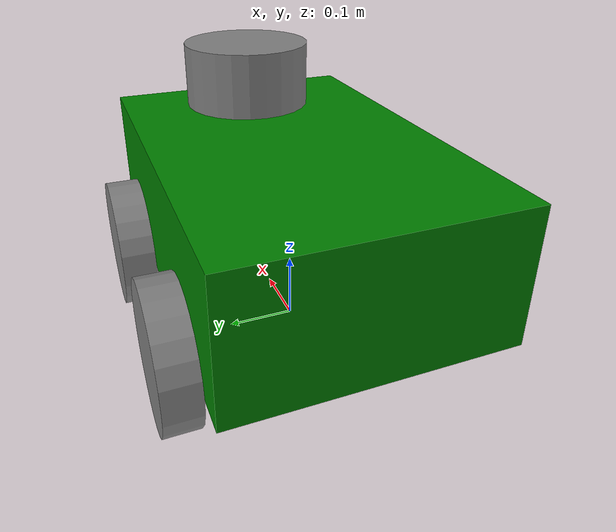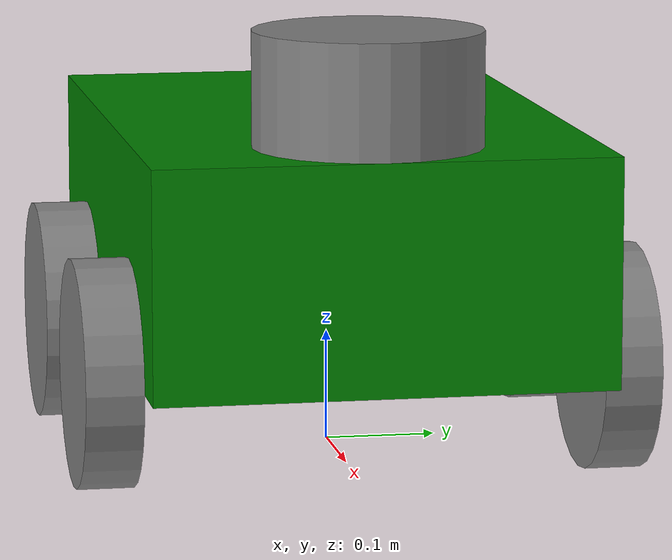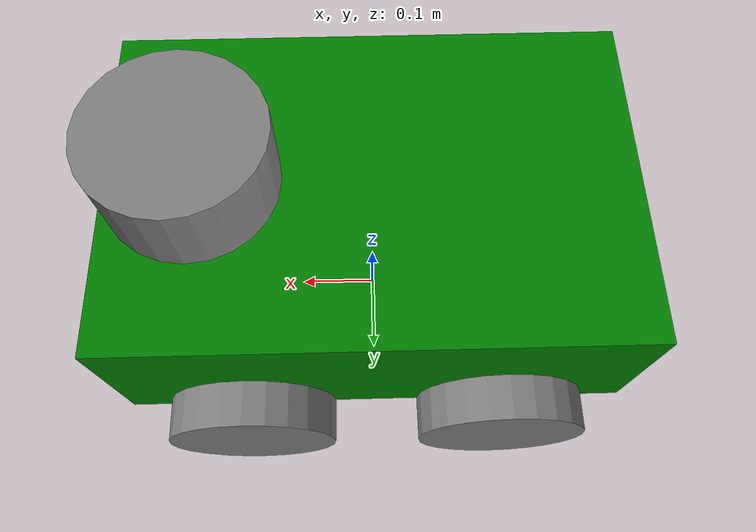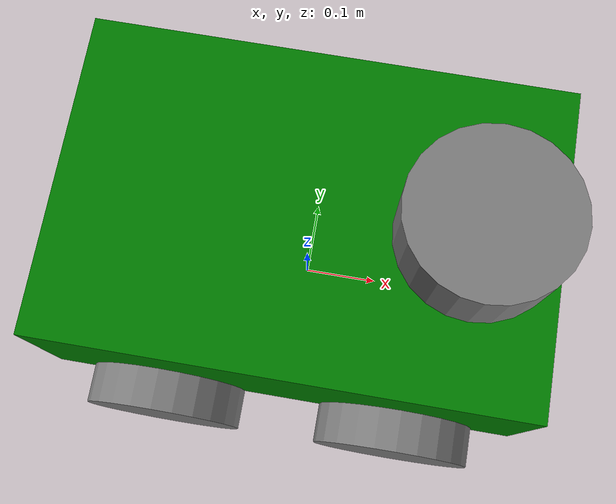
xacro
<?xml version="1.0"?>
<robot name="my_robot" xmlns:xacro="http://www.ros.org/wiki/xacro">

    <xacro:include filename="common_properties.urdf.xacro" />
    <xacro:include filename="mobile_base.urdf.xacro" />
    <xacro:include filename="mobile_base_gazebo.urdf.xacro" />
    <xacro:include filename="sensors.urdf.xacro" />

</robot>

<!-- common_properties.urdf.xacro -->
<robot xmlns:xacro="http://www.ros.org/wiki/xacro">
    <material name="green">
        <color rgba="0 0.5 0 1"/>
    </material>

    <material name="grey">
        <color rgba="0.5 0.5 0.5 1"/>
    </material>

    <xacro:macro name="box_inertia" params="m l w h xyz rpy">
        <inertial>
            <origin xyz="${xyz}" rpy="${rpy}" />
            <mass value="${m}" />
            <inertia ixx="${(m/12) * (h*h +l*l)}" ixy ="0" ixz ="0"
                     iyy="${(m/12) * (w*w +l*l)}" iyz ="0"
                     izz="${(m/12) * (w*w +h*h)}"/>

        </inertial>
    </xacro:macro>

    <xacro:macro name="cylinder_inertia" params="m r h xyz rpy">
        <inertial>
            <origin xyz="${xyz}" rpy="${rpy}" />
            <mass value="${m}" />
            <inertia ixx="${(m/12) * (h*h +3*r*r)}" ixy ="0" ixz ="0"
                     iyy="${(m/12) * (h*h +3*r*r)}" iyz ="0"
                     izz="${(m/2) * (r*r)}"/>
        </inertial>
    </xacro:macro>
</robot>

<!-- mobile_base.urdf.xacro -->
<robot xmlns:xacro="http://www.ros.org/wiki/xacro">

    <xacro:property name="base_length" value="0.6" />
    <xacro:property name="base_width" value="0.4" />
    <xacro:property name="base_height" value="0.2" />
    <xacro:property name="wheel_radius" value="0.1" />
    <xacro:property name="wheel_length" value="0.05" />

    <link name="base_footprint" />

    <link name="base_link">
        <visual>
            <geometry>
                <box size="0.6 0.4 0.2"/>
            </geometry>
            <origin xyz="0 0 0.1" rpy="0 0 0"/>
            <material name="green" />
        </visual>
        <collision>
            <geometry>
                <box size="0.6 0.4 0.2"/>
            </geometry>
            <origin xyz="0 0 0.1" rpy="0 0 0"/>
        </collision>
        <xacro:box_inertia m="2" l="${2*base_length}" w="${2*base_width}" h="${2*base_height}"
                           xyz="0 0 0.1" rpy="0 0 0" />
    </link>

    <xacro:macro name="wheel_link" params="prefix">
        <link name="${prefix} wheel">
            <visual>
                <geometry>
                    <cylinder radius="0.1" length="0.05"/>
                </geometry>
                <origin xyz="0 0 0" rpy="1.57 0 0"/>
                <material name="grey" />
            </visual>
            <collision>
                <geometry>
                    <cylinder radius="0.1" length="0.05"/>
                </geometry>
                <origin xyz="0 0 0" rpy="1.57 0 0"/>
            </collision>
            <xacro:cylinder_inertia m="0.2" r="${2*wheel_radius}" h="${2*wheel_length}"
                                    xyz="0 0 0" rpy="1.57 0 0" />
        </link>
    </xacro:macro>

    <xacro:wheel_link prefix="right_back" />
    <xacro:wheel_link prefix="right_front" />
    <xacro:wheel_link prefix="left_back" />
    <xacro:wheel_link prefix="left_front" />

    <joint name="base_right_back_wheel" type="continuous">
        <parent link="base_link" />
        <child link="right_back wheel" />
        <origin xyz="-0.15 -0.225 0" rpy="0 0 0"/>
        <axis xyz="0 1 0"/>
    </joint>

    <joint name="base_right_front_wheel" type="continuous">
        <parent link="base_link" />
        <child link="right_front wheel" />
        <origin xyz="0.15 -0.225 0" rpy="0 0 0"/>
        <axis xyz="0 1 0"/>
    </joint>

    <joint name="base_left_back_wheel" type="continuous">
        <parent link="base_link" />
        <child link="left_back wheel" />
        <origin xyz="-0.15 0.225 0" rpy="0 0 0"/>
        <axis xyz="0 1 0"/>
    </joint>

    <joint name="base_left_front_wheel" type="continuous">
        <parent link="base_link" />
        <child link="left_front wheel" />
        <origin xyz="0.15 0.225 0" rpy="0 0 0"/>
        <axis xyz="0 1 0"/>
    </joint>

    <joint name="base_link_footprint" type="fixed">
        <parent link="base_footprint" />
        <child link="base_link" />
        <origin xyz="0 0 0.1" rpy="0 0 0"/>

    </joint>

</robot>

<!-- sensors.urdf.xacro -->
<robot xmlns:xacro="http://www.ros.org/wiki/xacro">

    <link name="laser_frame">
        <visual>
            <geometry>
                <cylinder radius="0.1" length="0.1"/>
            </geometry>
            <origin xyz="0 0 0" rpy="0 0 0"/>
            <material name="grey" />
        </visual>
        <collision>
            <geometry>
                <cylinder radius="0.1" length="0.1"/>
            </geometry>
            <origin xyz="0 0 0" rpy="1.57 0 0"/>
        </collision>
        <xacro:cylinder_inertia m="0.2" r="${2*wheel_radius}" h="${2*wheel_length}"
                                    xyz="0 0 0" rpy="1.57 0 0" />

    </link>

    <joint name="base_lidar_joint" type="fixed">
        <parent link="base_link" />
        <child link="laser_frame" />
        <origin xyz="0.2 0 0.25" rpy="0 0 0"/>
    </joint>

    <gazebo reference="laser_frame">
        <material>Gazebo/Grey</material>

        <sensor name="laser" type="ray">
            <pose> 0 0 0 0 0 0 </pose>
            <visualize>true</visualize>
            <update_rate>10</update_rate>
            <ray>
                <scan>
                    <horizontal>
                        <samples>360</samples>
                        <min_angle>-3.14</min_angle>
                        <max_angle>3.14</max_angle>
                    </horizontal>
                </scan>
                <range>
                    <min>0.3</min>
                    <max>12</max>
                </range>
            </ray>
            <plugin name="laser_controller" filename="libgazebo_ros_ray_sensor.so">
                <ros>
                    <argument>~/out:=scan</argument>
                </ros>
                <output_type>sensor_msgs/LaserScan</output_type>
                <frame_name>laser_frame</frame_name>
            </plugin>
        </sensor>
    </gazebo>

</robot>
